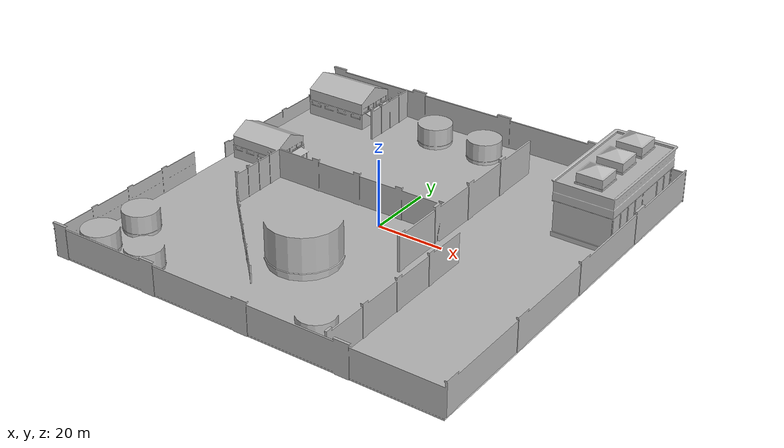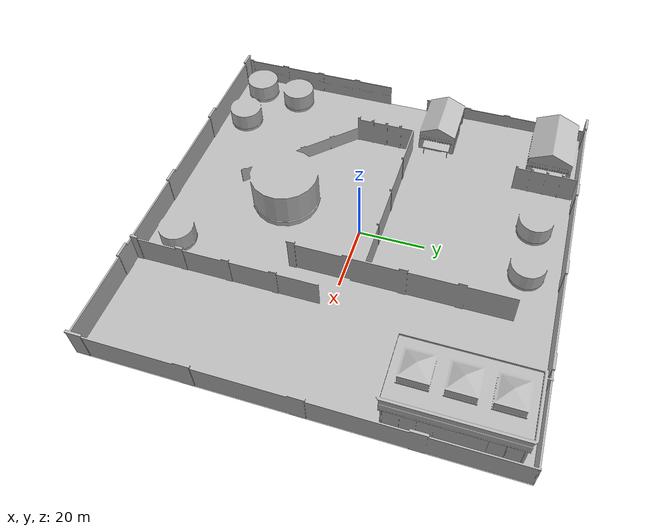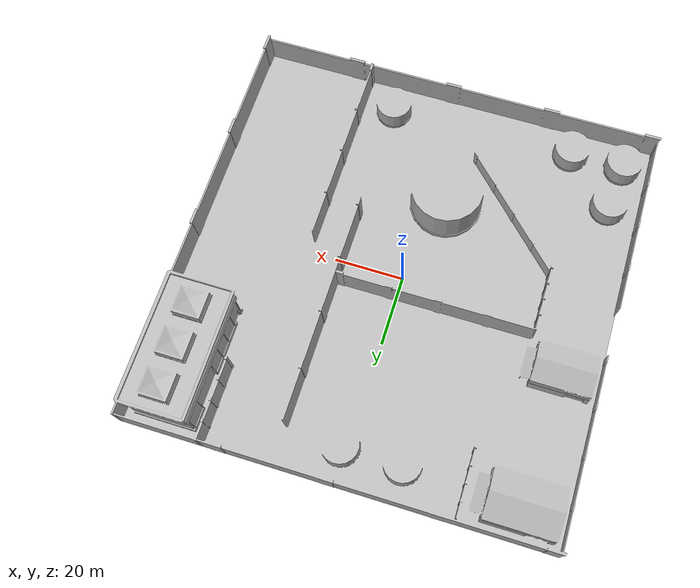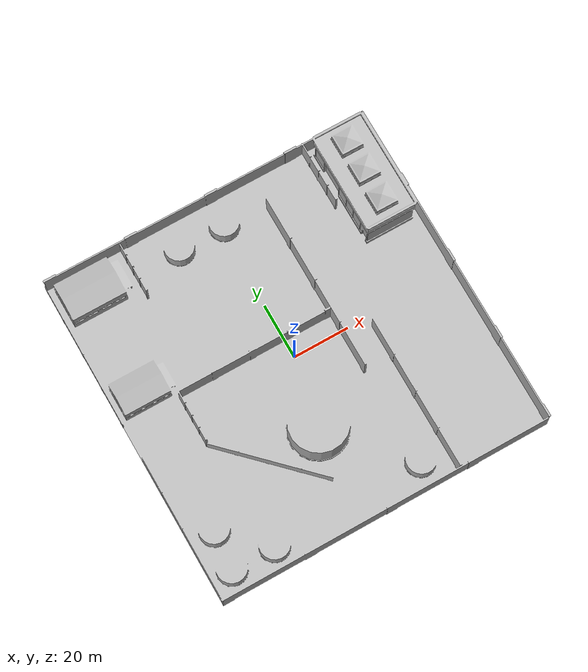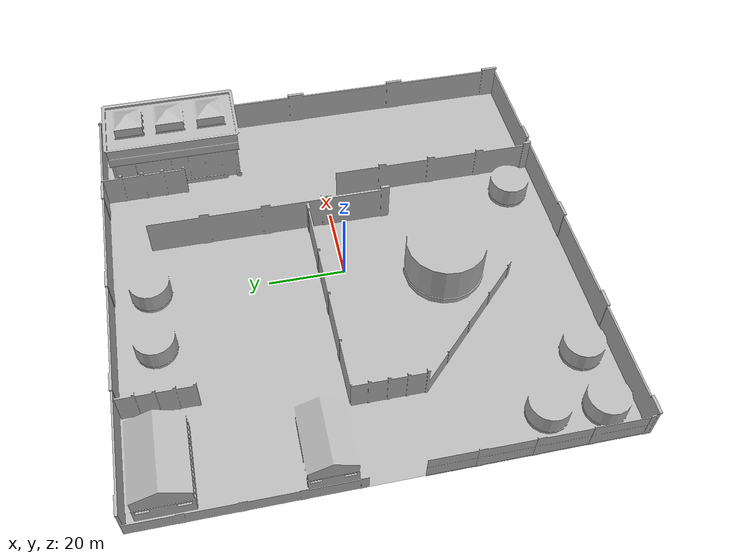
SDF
<?xml version='1.0' encoding='utf-8'?>
<sdf version="1.6">
  <world name="world">
    <gravity>0 0 -9.8</gravity>
    <physics default="0" name="default_physics" type="ode">
      <max_step_size>0.001</max_step_size>
      <real_time_factor>1</real_time_factor>
      <real_time_update_rate>1000</real_time_update_rate>
    </physics>
    <scene>
      <ambient>0.6 0.6 0.6 1</ambient>
      <background>0.4 0.4 0.4 1</background>
      <shadows>false</shadows>
    </scene>
    <include>
      <uri>model://sun</uri>
    </include>
    <model name="room1">
               <!-- create a body for the model -->
                     <pose>0 0 0  0 0 0</pose>
      <static>true</static>
            <link name="body">
                <!-- import the mesh for rendering -->
                <visual name="visual">
                    <geometry>
                        <mesh>
                            <uri>model://room1/meshes/room_1.dae</uri>
                        </mesh>
                    </geometry>
                </visual>
                <!-- Gazebo should derive the correct bounding boxes from any given mesh -->
                <collision name='collision'>
                    <geometry>
                        <mesh>
                            <uri>model://room1/meshes/room_1.dae</uri>
                            <scale>1 1 1</scale>
                        </mesh>
                    </geometry>
                </collision>
                <!-- import the mesh for collisions -->
                <!-- Gazebo should derive the correct bounding boxes from any given mesh -->
            </link>
    </model>
  </world>
</sdf>
